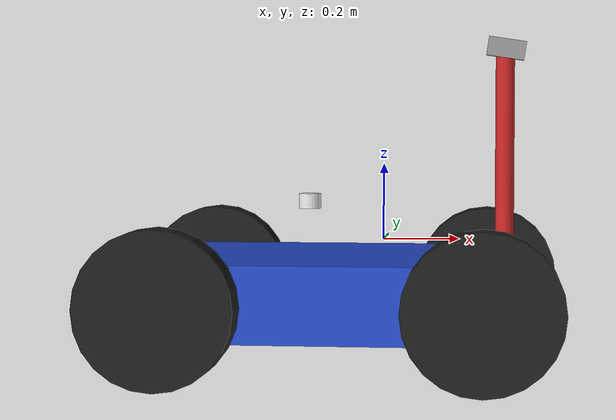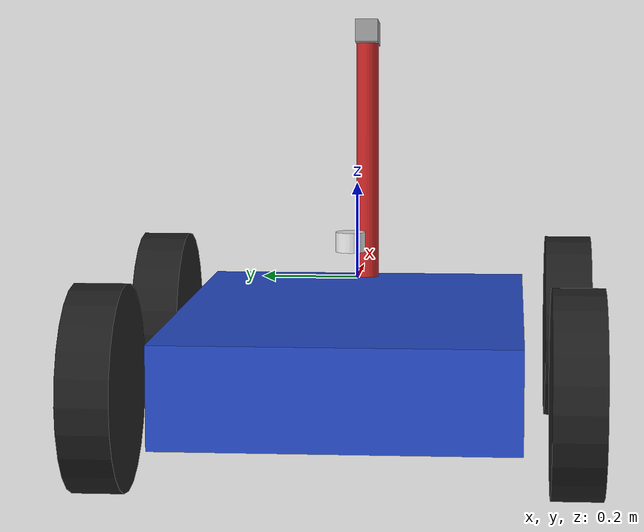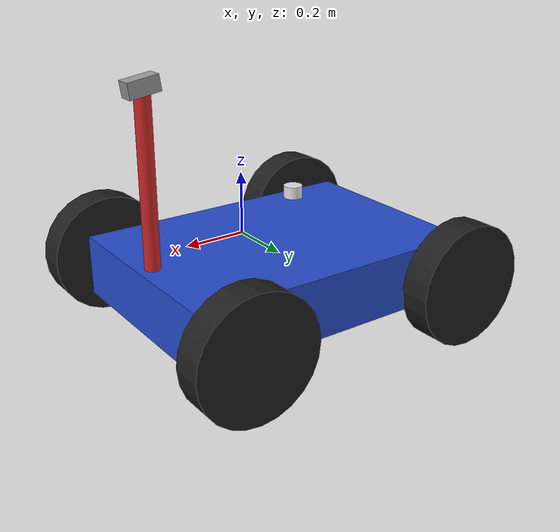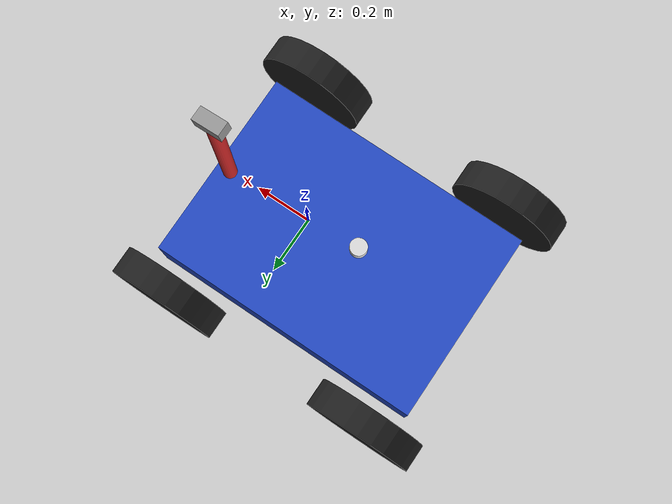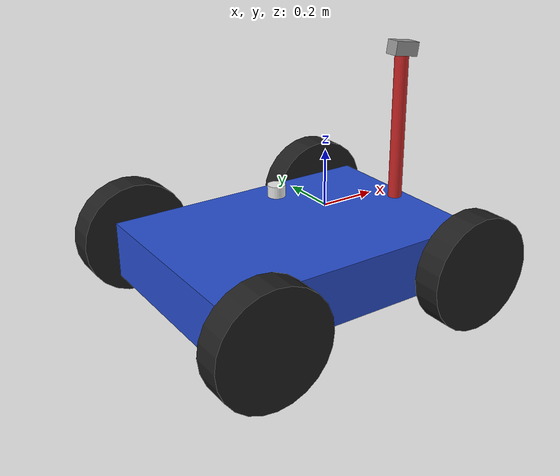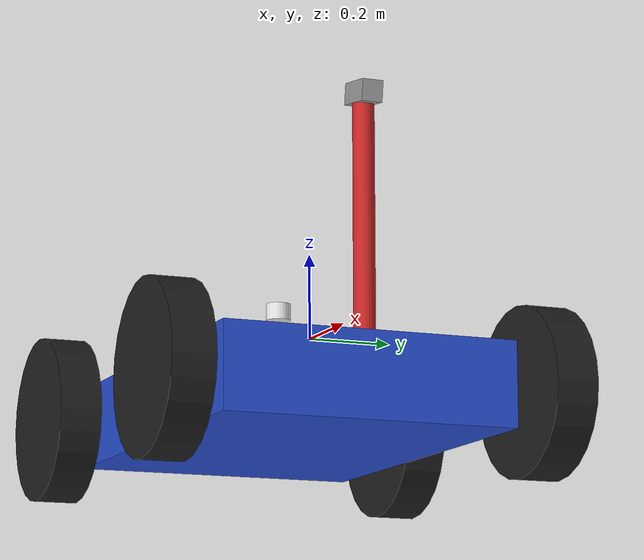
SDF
<?xml version='1.0'?>
<sdf version='1.7'>
  <model name='rover_robot'>
    <link name='body'>
      <inertial>
        <mass>1</mass>
        <inertia>
          <ixx>0.166667</ixx>
          <ixy>0</ixy>
          <ixz>0</ixz>
          <iyy>0.166667</iyy>
          <iyz>0</iyz>
          <izz>0.166667</izz>
        </inertia>
        <pose>0 0 0 0 -0 0</pose>
      </inertial>
      <pose>-0.129 0 -0.142857 0 -0 0</pose>
      <gravity>1</gravity>
      <self_collide>0</self_collide>
      <kinematic>0</kinematic>
      <enable_wind>0</enable_wind>
      <visual name='visual'>
        <pose>0 0 0 0 -0 0</pose>
        <geometry>
          <box>
            <size>1 0.7 0.2</size>
          </box>
        </geometry>
        <material>
          <lighting>1</lighting>
          <script>
            <uri>file://media/materials/scripts/gazebo.material</uri>
            <name>Gazebo/Blue</name>
          </script>
          <shader type='pixel'>
            <normal_map>__default__</normal_map>
          </shader>
          <ambient>0.0 0.0 0.4 1</ambient>
          <diffuse>0.0 0.0 0.8 1</diffuse>
          <specular>0.1 0.1 0.1 1</specular>
          <emissive>0 0 0 1</emissive>
        </material>
        <transparency>0</transparency>
        <cast_shadows>1</cast_shadows>
      </visual>
      <collision name='collision'>
        <laser_retro>0</laser_retro>
        <max_contacts>10</max_contacts>
        <pose>0 0 0 0 -0 0</pose>
        <geometry>
          <box>
            <size>1 0.7 0.2</size>
          </box>
        </geometry>
        <surface>
          <friction>
            <ode>
              <mu>1</mu>
              <mu2>1</mu2>
              <fdir1>0 0 0</fdir1>
              <slip1>0</slip1>
              <slip2>0</slip2>
            </ode>
            <torsional>
              <coefficient>1</coefficient>
              <patch_radius>0</patch_radius>
              <surface_radius>0</surface_radius>
              <use_patch_radius>1</use_patch_radius>
              <ode>
                <slip>0</slip>
              </ode>
            </torsional>
          </friction>
          <bounce>
            <restitution_coefficient>0</restitution_coefficient>
            <threshold>1e+06</threshold>
          </bounce>
          <contact>
            <collide_without_contact>0</collide_without_contact>
            <collide_without_contact_bitmask>1</collide_without_contact_bitmask>
            <collide_bitmask>1</collide_bitmask>
            <ode>
              <soft_cfm>0</soft_cfm>
              <soft_erp>0.2</soft_erp>
              <kp>1e+13</kp>
              <kd>1</kd>
              <max_vel>0.01</max_vel>
              <min_depth>0</min_depth>
            </ode>
            <bullet>
              <split_impulse>1</split_impulse>
              <split_impulse_penetration_threshold>-0.01</split_impulse_penetration_threshold>
              <soft_cfm>0</soft_cfm>
              <soft_erp>0.2</soft_erp>
              <kp>1e+13</kp>
              <kd>1</kd>
            </bullet>
          </contact>
        </surface>
      </collision>
      <sensor name="imu_sensor" type="imu">
        <always_on>true</always_on>
        <update_rate>50</update_rate>
        <topic>/imu</topic>
        <visualize>false</visualize>
      </sensor>
    </link>
    <link name='front_left_wheel'>
      <inertial>
        <mass>1</mass>
        <inertia>
          <ixx>0.145833</ixx>
          <ixy>0</ixy>
          <ixz>0</ixz>
          <iyy>0.145833</iyy>
          <iyz>0</iyz>
          <izz>0.125</izz>
        </inertia>
        <pose>0 0 0 0 -0 0</pose>
      </inertial>
      <pose>0.271 0.45 -0.142857 1.57079 -0 0</pose>
      <gravity>1</gravity>
      <self_collide>0</self_collide>
      <kinematic>0</kinematic>
      <enable_wind>0</enable_wind>
      <visual name='visual'>
        <pose>0 0 0 0 -0 0</pose>
        <geometry>
          <cylinder>
            <radius>0.2</radius>
            <length>0.1</length>
          </cylinder>
        </geometry>
        <material>
          <lighting>1</lighting>
          <script>
            <uri>file://media/materials/scripts/gazebo.material</uri>
            <name>Gazebo/Black</name>
          </script>
          <shader type='pixel'>
            <normal_map>__default__</normal_map>
          </shader>
          <ambient>0.05 0.05 0.05 1</ambient>
          <diffuse>0.1 0.1 0.1 1</diffuse>
          <specular>0.02 0.02 0.02 1</specular>
          <emissive>0 0 0 1</emissive>
        </material>
        <transparency>0</transparency>
        <cast_shadows>1</cast_shadows>
      </visual>
      <collision name='collision'>
        <laser_retro>0</laser_retro>
        <max_contacts>10</max_contacts>
        <pose>0 0 0 0 -0 0</pose>
        <geometry>
          <cylinder>
            <radius>0.2</radius>
            <length>0.1</length>
          </cylinder>
        </geometry>
        <surface>
          <friction>
            <ode>
              <mu>1</mu>
              <mu2>1</mu2>
              <fdir1>0 0 0</fdir1>
              <slip1>0</slip1>
              <slip2>0</slip2>
            </ode>
            <torsional>
              <coefficient>1</coefficient>
              <patch_radius>0</patch_radius>
              <surface_radius>0</surface_radius>
              <use_patch_radius>1</use_patch_radius>
              <ode>
                <slip>0</slip>
              </ode>
            </torsional>
          </friction>
          <bounce>
            <restitution_coefficient>0</restitution_coefficient>
            <threshold>1e+06</threshold>
          </bounce>
          <contact>
            <collide_without_contact>0</collide_without_contact>
            <collide_without_contact_bitmask>1</collide_without_contact_bitmask>
            <collide_bitmask>1</collide_bitmask>
            <ode>
              <soft_cfm>0</soft_cfm>
              <soft_erp>0.2</soft_erp>
              <kp>1e+13</kp>
              <kd>1</kd>
              <max_vel>0.01</max_vel>
              <min_depth>0</min_depth>
            </ode>
            <bullet>
              <split_impulse>1</split_impulse>
              <split_impulse_penetration_threshold>-0.01</split_impulse_penetration_threshold>
              <soft_cfm>0</soft_cfm>
              <soft_erp>0.2</soft_erp>
              <kp>1e+13</kp>
              <kd>1</kd>
            </bullet>
          </contact>
        </surface>
      </collision>
    </link>
    <link name='rear_left_wheel'>
      <inertial>
        <mass>1</mass>
        <inertia>
          <ixx>0.145833</ixx>
          <ixy>0</ixy>
          <ixz>0</ixz>
          <iyy>0.145833</iyy>
          <iyz>0</iyz>
          <izz>0.125</izz>
        </inertia>
        <pose>0 0 0 0 -0 0</pose>
      </inertial>
      <pose>-0.529 0.45 -0.142857 1.57079 -0 0</pose>
      <gravity>1</gravity>
      <self_collide>0</self_collide>
      <kinematic>0</kinematic>
      <enable_wind>0</enable_wind>
      <visual name='visual'>
        <pose>0 0 0 0 -0 0</pose>
        <geometry>
          <cylinder>
            <radius>0.2</radius>
            <length>0.1</length>
          </cylinder>
        </geometry>
        <material>
          <lighting>1</lighting>
          <script>
            <uri>file://media/materials/scripts/gazebo.material</uri>
            <name>Gazebo/Black</name>
          </script>
          <shader type='pixel'>
            <normal_map>__default__</normal_map>
          </shader>
          <ambient>0.05 0.05 0.05 1</ambient>
          <diffuse>0.1 0.1 0.1 1</diffuse>
          <specular>0.02 0.02 0.02 1</specular>
          <emissive>0 0 0 1</emissive>
        </material>
        <transparency>0</transparency>
        <cast_shadows>1</cast_shadows>
      </visual>
      <collision name='collision'>
        <laser_retro>0</laser_retro>
        <max_contacts>10</max_contacts>
        <pose>0 0 0 0 -0 0</pose>
        <geometry>
          <cylinder>
            <radius>0.2</radius>
            <length>0.1</length>
          </cylinder>
        </geometry>
        <surface>
          <friction>
            <ode>
              <mu>1</mu>
              <mu2>1</mu2>
              <fdir1>0 0 0</fdir1>
              <slip1>0</slip1>
              <slip2>0</slip2>
            </ode>
            <torsional>
              <coefficient>1</coefficient>
              <patch_radius>0</patch_radius>
              <surface_radius>0</surface_radius>
              <use_patch_radius>1</use_patch_radius>
              <ode>
                <slip>0</slip>
              </ode>
            </torsional>
          </friction>
          <bounce>
            <restitution_coefficient>0</restitution_coefficient>
            <threshold>1e+06</threshold>
          </bounce>
          <contact>
            <collide_without_contact>0</collide_without_contact>
            <collide_without_contact_bitmask>1</collide_without_contact_bitmask>
            <collide_bitmask>1</collide_bitmask>
            <ode>
              <soft_cfm>0</soft_cfm>
              <soft_erp>0.2</soft_erp>
              <kp>1e+13</kp>
              <kd>1</kd>
              <max_vel>0.01</max_vel>
              <min_depth>0</min_depth>
            </ode>
            <bullet>
              <split_impulse>1</split_impulse>
              <split_impulse_penetration_threshold>-0.01</split_impulse_penetration_threshold>
              <soft_cfm>0</soft_cfm>
              <soft_erp>0.2</soft_erp>
              <kp>1e+13</kp>
              <kd>1</kd>
            </bullet>
          </contact>
        </surface>
      </collision>
    </link>
    <link name='front_right_wheel'>
      <inertial>
        <mass>1</mass>
        <inertia>
          <ixx>0.145833</ixx>
          <ixy>0</ixy>
          <ixz>0</ixz>
          <iyy>0.145833</iyy>
          <iyz>0</iyz>
          <izz>0.125</izz>
        </inertia>
        <pose>0 0 0 0 -0 0</pose>
      </inertial>
      <pose>0.271 -0.45 -0.142857 1.57079 -0 0</pose>
      <gravity>1</gravity>
      <self_collide>0</self_collide>
      <kinematic>0</kinematic>
      <enable_wind>0</enable_wind>
      <visual name='visual'>
        <pose>0 0 0 0 -0 0</pose>
        <geometry>
          <cylinder>
            <radius>0.2</radius>
            <length>0.1</length>
          </cylinder>
        </geometry>
        <material>
          <lighting>1</lighting>
          <script>
            <uri>file://media/materials/scripts/gazebo.material</uri>
            <name>Gazebo/Black</name>
          </script>
          <shader type='pixel'>
            <normal_map>__default__</normal_map>
          </shader>
          <ambient>0.05 0.05 0.05 1</ambient>
          <diffuse>0.1 0.1 0.1 1</diffuse>
          <specular>0.02 0.02 0.02 1</specular>
          <emissive>0 0 0 1</emissive>
        </material>
        <transparency>0</transparency>
        <cast_shadows>1</cast_shadows>
      </visual>
      <collision name='collision'>
        <laser_retro>0</laser_retro>
        <max_contacts>10</max_contacts>
        <pose>0 0 0 0 -0 0</pose>
        <geometry>
          <cylinder>
            <radius>0.2</radius>
            <length>0.1</length>
          </cylinder>
        </geometry>
        <surface>
          <friction>
            <ode>
              <mu>1</mu>
              <mu2>1</mu2>
              <fdir1>0 0 0</fdir1>
              <slip1>0</slip1>
              <slip2>0</slip2>
            </ode>
            <torsional>
              <coefficient>1</coefficient>
              <patch_radius>0</patch_radius>
              <surface_radius>0</surface_radius>
              <use_patch_radius>1</use_patch_radius>
              <ode>
                <slip>0</slip>
              </ode>
            </torsional>
          </friction>
          <bounce>
            <restitution_coefficient>0</restitution_coefficient>
            <threshold>1e+06</threshold>
          </bounce>
          <contact>
            <collide_without_contact>0</collide_without_contact>
            <collide_without_contact_bitmask>1</collide_without_contact_bitmask>
            <collide_bitmask>1</collide_bitmask>
            <ode>
              <soft_cfm>0</soft_cfm>
              <soft_erp>0.2</soft_erp>
              <kp>1e+13</kp>
              <kd>1</kd>
              <max_vel>0.01</max_vel>
              <min_depth>0</min_depth>
            </ode>
            <bullet>
              <split_impulse>1</split_impulse>
              <split_impulse_penetration_threshold>-0.01</split_impulse_penetration_threshold>
              <soft_cfm>0</soft_cfm>
              <soft_erp>0.2</soft_erp>
              <kp>1e+13</kp>
              <kd>1</kd>
            </bullet>
          </contact>
        </surface>
      </collision>
    </link>
    <link name='rear_right_wheel'>
      <inertial>
        <mass>1</mass>
        <inertia>
          <ixx>0.145833</ixx>
          <ixy>0</ixy>
          <ixz>0</ixz>
          <iyy>0.145833</iyy>
          <iyz>0</iyz>
          <izz>0.125</izz>
        </inertia>
        <pose>0 0 0 0 -0 0</pose>
      </inertial>
      <pose>-0.529 -0.45 -0.142857 1.57079 -0 0</pose>
      <gravity>1</gravity>
      <self_collide>0</self_collide>
      <kinematic>0</kinematic>
      <enable_wind>0</enable_wind>
      <visual name='visual'>
        <pose>0 0 0 0 -0 0</pose>
        <geometry>
          <cylinder>
            <radius>0.2</radius>
            <length>0.1</length>
          </cylinder>
        </geometry>
        <material>
          <lighting>1</lighting>
          <script>
            <uri>file://media/materials/scripts/gazebo.material</uri>
            <name>Gazebo/Black</name>
          </script>
          <shader type='pixel'>
            <normal_map>__default__</normal_map>
          </shader>
          <ambient>0.05 0.05 0.05 1</ambient>
          <diffuse>0.1 0.1 0.1 1</diffuse>
          <specular>0.02 0.02 0.02 1</specular>
          <emissive>0 0 0 1</emissive>
        </material>
        <transparency>0</transparency>
        <cast_shadows>1</cast_shadows>
      </visual>
      <collision name='collision'>
        <laser_retro>0</laser_retro>
        <max_contacts>10</max_contacts>
        <pose>0 0 0 0 -0 0</pose>
        <geometry>
          <cylinder>
            <radius>0.2</radius>
            <length>0.1</length>
          </cylinder>
        </geometry>
        <surface>
          <friction>
            <ode>
              <mu>1</mu>
              <mu2>1</mu2>
              <fdir1>0 0 0</fdir1>
              <slip1>0</slip1>
              <slip2>0</slip2>
            </ode>
            <torsional>
              <coefficient>1</coefficient>
              <patch_radius>0</patch_radius>
              <surface_radius>0</surface_radius>
              <use_patch_radius>1</use_patch_radius>
              <ode>
                <slip>0</slip>
              </ode>
            </torsional>
          </friction>
          <bounce>
            <restitution_coefficient>0</restitution_coefficient>
            <threshold>1e+06</threshold>
          </bounce>
          <contact>
            <collide_without_contact>0</collide_without_contact>
            <collide_without_contact_bitmask>1</collide_without_contact_bitmask>
            <collide_bitmask>1</collide_bitmask>
            <ode>
              <soft_cfm>0</soft_cfm>
              <soft_erp>0.2</soft_erp>
              <kp>1e+13</kp>
              <kd>1</kd>
              <max_vel>0.01</max_vel>
              <min_depth>0</min_depth>
            </ode>
            <bullet>
              <split_impulse>1</split_impulse>
              <split_impulse_penetration_threshold>-0.01</split_impulse_penetration_threshold>
              <soft_cfm>0</soft_cfm>
              <soft_erp>0.2</soft_erp>
              <kp>1e+13</kp>
              <kd>1</kd>
            </bullet>
          </contact>
        </surface>
      </collision>
    </link>
    <link name='holder'>
      <inertial>
        <mass>1</mass>
        <inertia>
          <ixx>0.145833</ixx>
          <ixy>0</ixy>
          <ixz>0</ixz>
          <iyy>0.145833</iyy>
          <iyz>0</iyz>
          <izz>0.125</izz>
        </inertia>
        <pose>0 0 0 0 -0 0</pose>
      </inertial>
      <pose>0.321 0 0.207143 0 -0 0</pose>
      <gravity>1</gravity>
      <self_collide>0</self_collide>
      <kinematic>0</kinematic>
      <enable_wind>0</enable_wind>
      <visual name='visual'>
        <pose>0 0 0 0 -0 0</pose>
        <geometry>
          <cylinder>
            <radius>0.025</radius>
            <length>0.6</length>
          </cylinder>
        </geometry>
        <material>
          <lighting>1</lighting>
          <script>
            <uri>file://media/materials/scripts/gazebo.material</uri>
            <name>Gazebo/Red</name>
          </script>
          <shader type='pixel'>
            <normal_map>__default__</normal_map>
          </shader>
          <ambient>0.4 0.0 0.0 1</ambient>
          <diffuse>0.8 0.0 0.0 1</diffuse>
          <specular>0.1 0.1 0.1 1</specular>
          <emissive>0 0 0 1</emissive>
        </material>
        <transparency>0</transparency>
        <cast_shadows>1</cast_shadows>
      </visual>
      <collision name='collision'>
        <laser_retro>0</laser_retro>
        <max_contacts>10</max_contacts>
        <pose>0 0 0 0 -0 0</pose>
        <geometry>
          <cylinder>
            <radius>0.025</radius>
            <length>0.6</length>
          </cylinder>
        </geometry>
        <surface>
          <friction>
            <ode>
              <mu>1</mu>
              <mu2>1</mu2>
              <fdir1>0 0 0</fdir1>
              <slip1>0</slip1>
              <slip2>0</slip2>
            </ode>
            <torsional>
              <coefficient>1</coefficient>
              <patch_radius>0</patch_radius>
              <surface_radius>0</surface_radius>
              <use_patch_radius>1</use_patch_radius>
              <ode>
                <slip>0</slip>
              </ode>
            </torsional>
          </friction>
          <bounce>
            <restitution_coefficient>0</restitution_coefficient>
            <threshold>1e+06</threshold>
          </bounce>
          <contact>
            <collide_without_contact>0</collide_without_contact>
            <collide_without_contact_bitmask>1</collide_without_contact_bitmask>
            <collide_bitmask>1</collide_bitmask>
            <ode>
              <soft_cfm>0</soft_cfm>
              <soft_erp>0.2</soft_erp>
              <kp>1e+13</kp>
              <kd>1</kd>
              <max_vel>0.01</max_vel>
              <min_depth>0</min_depth>
            </ode>
            <bullet>
              <split_impulse>1</split_impulse>
              <split_impulse_penetration_threshold>-0.01</split_impulse_penetration_threshold>
              <soft_cfm>0</soft_cfm>
              <soft_erp>0.2</soft_erp>
              <kp>1e+13</kp>
              <kd>1</kd>
            </bullet>
          </contact>
        </surface>
      </collision>
    </link>
    <link name='cam'>
      <inertial>
        <mass>1</mass>
        <inertia>
          <ixx>0.166667</ixx>
          <ixy>0</ixy>
          <ixz>0</ixz>
          <iyy>0.166667</iyy>
          <iyz>0</iyz>
          <izz>0.166667</izz>
        </inertia>
        <pose>0 0 0 0 -0 0</pose>
      </inertial>
      <pose>0.324 0 0.507143 0 0.15 0</pose>
      <gravity>1</gravity>
      <self_collide>0</self_collide>
      <kinematic>0</kinematic>
      <enable_wind>0</enable_wind>
      <visual name='visual'>
        <pose>0 0 0 0 -0 0</pose>
        <geometry>
          <box>
            <size>0.1 0.05 0.05</size>
          </box>
        </geometry>
        <material>
          <lighting>1</lighting>
          <script>
            <uri>file://media/materials/scripts/gazebo.material</uri>
            <name>Gazebo/Grey</name>
          </script>
          <shader type='pixel'>
            <normal_map>__default__</normal_map>
          </shader>
          <ambient>0.6 0.6 0.6 1</ambient>
          <diffuse>0.9 0.9 0.9 1</diffuse>
          <specular>0.2 0.2 0.2 1</specular>
          <emissive>0 0 0 1</emissive>
        </material>
        <transparency>0</transparency>
        <cast_shadows>1</cast_shadows>
      </visual>
      <collision name='collision'>
        <laser_retro>0</laser_retro>
        <max_contacts>10</max_contacts>
        <pose>0 0 0 0 -0 0</pose>
        <geometry>
          <box>
            <size>0.1 0.05 0.05</size>
          </box>
        </geometry>
        <surface>
          <friction>
            <ode>
              <mu>1</mu>
              <mu2>1</mu2>
              <fdir1>0 0 0</fdir1>
              <slip1>0</slip1>
              <slip2>0</slip2>
            </ode>
            <torsional>
              <coefficient>1</coefficient>
              <patch_radius>0</patch_radius>
              <surface_radius>0</surface_radius>
              <use_patch_radius>1</use_patch_radius>
              <ode>
                <slip>0</slip>
              </ode>
            </torsional>
          </friction>
          <bounce>
            <restitution_coefficient>0</restitution_coefficient>
            <threshold>1e+06</threshold>
          </bounce>
          <contact>
            <collide_without_contact>0</collide_without_contact>
            <collide_without_contact_bitmask>1</collide_without_contact_bitmask>
            <collide_bitmask>1</collide_bitmask>
            <ode>
              <soft_cfm>0</soft_cfm>
              <soft_erp>0.2</soft_erp>
              <kp>1e+13</kp>
              <kd>1</kd>
              <max_vel>0.01</max_vel>
              <min_depth>0</min_depth>
            </ode>
            <bullet>
              <split_impulse>1</split_impulse>
              <split_impulse_penetration_threshold>-0.01</split_impulse_penetration_threshold>
              <soft_cfm>0</soft_cfm>
              <soft_erp>0.2</soft_erp>
              <kp>1e+13</kp>
              <kd>1</kd>
            </bullet>
          </contact>
        </surface>
      </collision>
      <sensor name="camera" type="camera">
				<camera>
					<horizontal_fov>1.047</horizontal_fov>
					<image>
					<width>320</width>
					<height>240</height>
					</image>
					<clip>
					<near>0.1</near>
					<far>100</far>
					</clip>
				</camera>
				<always_on>1</always_on>
				<update_rate>30</update_rate>
				<visualize>true</visualize>
				<topic>camera</topic>
				</sensor>
    </link>
    <link name="lidar_link">
      <pose>-0.2 0 0.1 0 0 0</pose>

      <inertial>
        <mass>0.2</mass>
        <inertia>
          <ixx>0.001</ixx>
          <iyy>0.001</iyy>
          <izz>0.001</izz>
          <ixy>0.0</ixy>
          <ixz>0.0</ixz>
          <iyz>0.0</iyz>
        </inertia>
      </inertial>

      <collision name="lidar_collision">
        <geometry>
          <cylinder>
            <radius>0.03</radius>
            <length>0.04</length>
          </cylinder>
        </geometry>
      </collision>

      <visual name="lidar_visual">
        <geometry>
          <cylinder>
            <radius>0.03</radius>
            <length>0.04</length>
          </cylinder>
        </geometry>
          <material>
            <ambient>0.6 0.6 0.6 1</ambient>
            <diffuse>0.9 0.9 0.9 1</diffuse>
            <specular>0.2 0.2 0.2 1</specular>
          </material>
      </visual>

      <sensor name="lidar_sensor" type="gpu_lidar">
        <topic>/scan</topic>
        <update_rate>10</update_rate>
        <visualize>true</visualize>
        <always_on>true</always_on>
        <pose>0 0 0 0 0 0</pose>

        <lidar>
          <scan>
            <horizontal>
              <samples>720</samples>
              <resolution>1</resolution>
              <min_angle>-1.5708</min_angle>
              <max_angle>1.5708</max_angle>
            </horizontal>
          </scan>
          <range>
            <min>0.7</min>
            <max>12.0</max>
            <resolution>0.01</resolution>
          </range>
        </lidar>
      </sensor>
    </link>
    <joint name="lidar_joint" type="fixed">
      <parent>body</parent>
      <child>lidar_link</child>
    </joint>
    <joint name='front_left_wheel_joint' type='revolute'>
      <parent>body</parent>
      <child>front_left_wheel</child>
      <pose>0 0 0 0 -0 0</pose>
      <axis>
        <xyz>-0 -0 -1</xyz>
        <limit>
          <lower>-1.79769e+308</lower>
          <upper>1.79769e+308</upper>
          <effort>-1</effort>
          <velocity>-1</velocity>
        </limit>
        <dynamics>
          <spring_reference>0</spring_reference>
          <spring_stiffness>0</spring_stiffness>
          <damping>0</damping>
        </dynamics>
      </axis>
      <physics>
        <ode>
          <limit>
            <cfm>0</cfm>
            <erp>0.2</erp>
          </limit>
          <suspension>
            <cfm>0</cfm>
            <erp>0.2</erp>
          </suspension>
        </ode>
      </physics>
    </joint>
    <joint name='rear_left_wheel_joint' type='revolute'>
      <parent>body</parent>
      <child>rear_left_wheel</child>
      <pose>0 0 0 0 -0 0</pose>
      <axis>
        <xyz>0 0 -1</xyz>
        <limit>
          <lower>-1.79769e+308</lower>
          <upper>1.79769e+308</upper>
          <effort>-1</effort>
          <velocity>-1</velocity>
        </limit>
        <dynamics>
          <spring_reference>0</spring_reference>
          <spring_stiffness>0</spring_stiffness>
          <damping>0</damping>
          <friction>0</friction>
        </dynamics>
      </axis>
      <physics>
        <ode>
          <limit>
            <cfm>0</cfm>
            <erp>0.2</erp>
          </limit>
          <suspension>
            <cfm>0</cfm>
            <erp>0.2</erp>
          </suspension>
        </ode>
      </physics>
    </joint>
    <joint name='front_right_wheel_joint' type='revolute'>
      <parent>body</parent>
      <child>front_right_wheel</child>
      <pose>0 0 0 0 -0 0</pose>
      <axis>
        <xyz>0 0 -1</xyz>
        <limit>
          <lower>-1.79769e+308</lower>
          <upper>1.79769e+308</upper>
          <effort>-1</effort>
          <velocity>-1</velocity>
        </limit>
        <dynamics>
          <spring_reference>0</spring_reference>
          <spring_stiffness>0</spring_stiffness>
          <damping>0</damping>
          <friction>0</friction>
        </dynamics>
      </axis>
      <physics>
        <ode>
          <limit>
            <cfm>0</cfm>
            <erp>0.2</erp>
          </limit>
          <suspension>
            <cfm>0</cfm>
            <erp>0.2</erp>
          </suspension>
        </ode>
      </physics>
    </joint>
    <joint name='rear_right_wheel_joint' type='revolute'>
      <parent>body</parent>
      <child>rear_right_wheel</child>
      <pose>0 0 0 0 -0 0</pose>
      <axis>
        <xyz>-0 -0 -1</xyz>
        <limit>
          <lower>-1.79769e+308</lower>
          <upper>1.79769e+308</upper>
          <effort>-1</effort>
          <velocity>-1</velocity>
        </limit>
        <dynamics>
          <spring_reference>0</spring_reference>
          <spring_stiffness>0</spring_stiffness>
          <damping>0</damping>
        </dynamics>
      </axis>
      <physics>
        <ode>
          <limit>
            <cfm>0</cfm>
            <erp>0.2</erp>
          </limit>
          <suspension>
            <cfm>0</cfm>
            <erp>0.2</erp>
          </suspension>
        </ode>
      </physics>
    </joint>
    <joint name='holder_body_joint' type='fixed'>
      <parent>body</parent>
      <child>holder</child>
      <pose>0 0 0 0 -0 0</pose>
      <physics>
        <ode>
          <limit>
            <cfm>0</cfm>
            <erp>0.2</erp>
          </limit>
          <suspension>
            <cfm>0</cfm>
            <erp>0.2</erp>
          </suspension>
        </ode>
      </physics>
    </joint>
    <joint name='holder_camera_joint' type='revolute'>
      <parent>holder</parent>
      <child>cam</child>
      <pose>0 0 0 0 -0 0</pose>
      <axis>
        <xyz>0 0 1</xyz>
        <limit>
          <lower>-1.79769e+308</lower>
          <upper>1.79769e+308</upper>
          <effort>-1</effort>
          <velocity>-1</velocity>
        </limit>
        <dynamics>
          <spring_reference>0</spring_reference>
          <spring_stiffness>0</spring_stiffness>
          <damping>0.6</damping>
        </dynamics>
      </axis>
      <physics>
        <ode>
          <limit>
            <cfm>0</cfm>
            <erp>0.2</erp>
          </limit>
          <suspension>
            <cfm>0</cfm>
            <erp>0.2</erp>
          </suspension>
        </ode>
      </physics>
    </joint>
    <static>0</static>
    <allow_auto_disable>1</allow_auto_disable>

    <plugin
        filename="ignition-gazebo-diff-drive-system"
        name="gz::sim::systems::DiffDrive">
        <left_joint>rear_left_wheel_joint</left_joint>
        <left_joint>front_left_wheel_joint</left_joint>
        <right_joint>rear_right_wheel_joint</right_joint>
        <right_joint>front_right_wheel_joint</right_joint>
        <wheel_separation>0.9</wheel_separation>
        <wheel_radius>0.2</wheel_radius>
        <max_linear_acceleration>1</max_linear_acceleration>
        <min_linear_acceleration>-1</min_linear_acceleration>
        <max_angular_acceleration>2</max_angular_acceleration>
        <min_angular_acceleration>-2</min_angular_acceleration>
        <max_linear_velocity>0.5</max_linear_velocity>
        <min_linear_velocity>-0.5</min_linear_velocity>
        <max_angular_velocity>1</max_angular_velocity>
        <min_angular_velocity>-1</min_angular_velocity>
      </plugin>

      <plugin
        filename="ignition-gazebo-joint-position-controller-system"
        name="gz::sim::systems::JointPositionController">
        <joint_name>holder_camera_joint</joint_name>
        <topic>camera_pos_cmd</topic>
        <p_gain>2</p_gain>
        <i_gain>0.1</i_gain>
        <d_gain>0.01</d_gain>
        <i_max>1</i_max>
        <i_min>-1</i_min>
        <cmd_max>1000</cmd_max>
        <cmd_min>-1000</cmd_min>
      </plugin>

      <plugin
        filename="ignition-gazebo-joint-state-publisher-system"
        name="gz::sim::systems::JointStatePublisher">
        <joint_name>holder_camera_joint</joint_name>
      </plugin>

      <plugin
        filename="ignition-gazebo-imu-system"
        name="gz::sim::systems::Imu">
      </plugin>

      <plugin
        filename="ignition-gazebo-pose-publisher-system"
        name="gz::sim::systems::PosePublisher">
        <publish_link_pose>true</publish_link_pose>
        <publish_sensor_pose>false</publish_sensor_pose>
        <publish_collision_pose>false</publish_collision_pose>
        <publish_visual_pose>false</publish_visual_pose>
        <publish_nested_model_pose>false</publish_nested_model_pose>
        <use_pose_vector_msg>false</use_pose_vector_msg>
        <static_publisher>false</static_publisher>
        <static_update_frequency>1</static_update_frequency>
      </plugin>

  </model>
</sdf>
